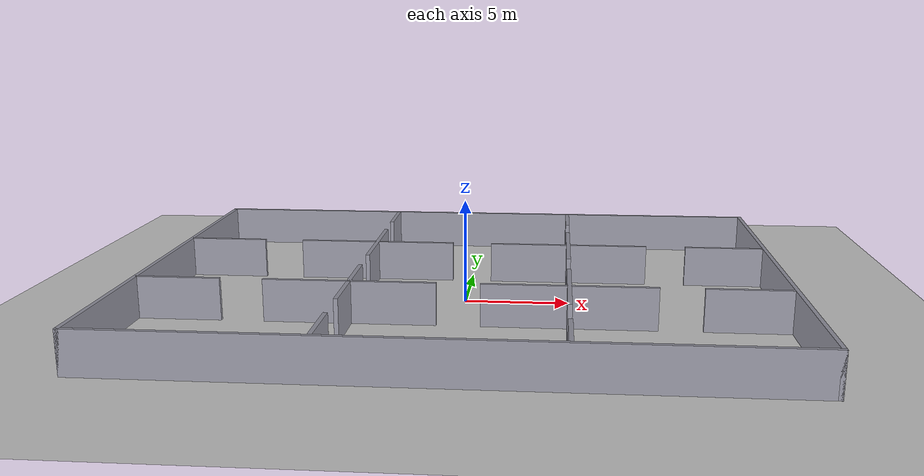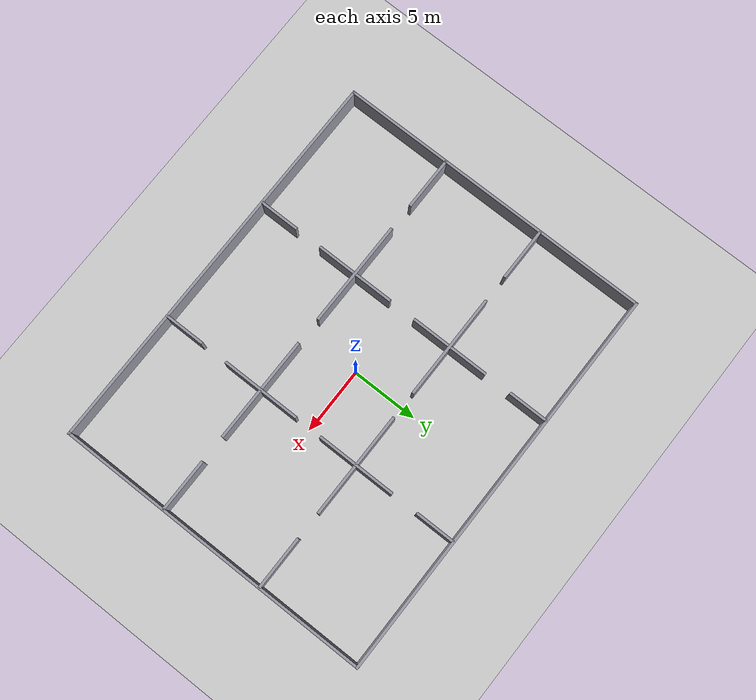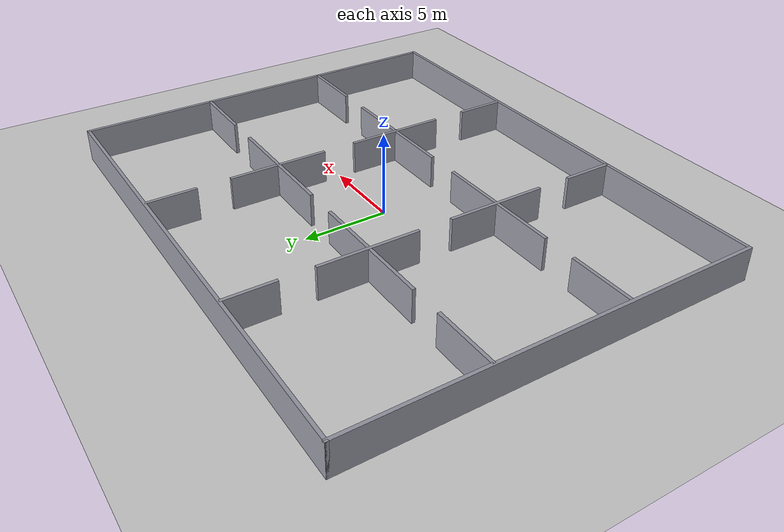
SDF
<?xml version="1.0" ?>
<sdf version="1.8">
  <world name="big_world">
    <physics name="1ms" type="dart">
      <max_step_size>0.001</max_step_size>
      <real_time_factor>1.0</real_time_factor>
    </physics>
    <plugin filename="gz-sim-physics-system" name="gz::sim::systems::Physics"/>
    <plugin filename="gz-sim-user-commands-system" name="gz::sim::systems::UserCommands"/>
    <plugin filename="gz-sim-scene-broadcaster-system" name="gz::sim::systems::SceneBroadcaster"/>
    <plugin filename="gz-sim-sensors-system" name="gz::sim::systems::Sensors">
      <render_engine>ogre2</render_engine>
    </plugin>
    <plugin filename="gz-sim-imu-system" name="gz::sim::systems::Imu"/>
    <light type="directional" name="sun">
      <cast_shadows>true</cast_shadows>
      <pose>0 0 10 0 0 0</pose>
      <diffuse>0.8 0.8 0.8 1</diffuse>
      <specular>0.2 0.2 0.2 1</specular>
      <direction>-0.5 0.1 -0.9</direction>
    </light>
    <model name="ground_plane">
      <static>true</static>
      <link name="link">
        <collision name="collision"><geometry><plane><normal>0 0 1</normal></plane></geometry></collision>
        <visual name="visual"><geometry><plane><normal>0 0 1</normal><size>100 100</size></plane></geometry>
          <material><ambient>0.8 0.8 0.8 1</ambient><diffuse>0.8 0.8 0.8 1</diffuse></material>
        </visual>
      </link>
    </model>
    <model name="outer_n">
      <static>true</static>
      <pose>0 12.0 1.0 0 0 0</pose>
      <link name="link">
        <collision name="c"><geometry><box><size>30.2 0.2 2.0</size></box></geometry></collision>
        <visual name="v"><geometry><box><size>30.2 0.2 2.0</size></box></geometry>
          <material><ambient>0.6 0.6 0.65 1</ambient><diffuse>0.6 0.6 0.65 1</diffuse></material>
        </visual>
      </link>
    </model>
    <model name="outer_s">
      <static>true</static>
      <pose>0 -12.0 1.0 0 0 0</pose>
      <link name="link">
        <collision name="c"><geometry><box><size>30.2 0.2 2.0</size></box></geometry></collision>
        <visual name="v"><geometry><box><size>30.2 0.2 2.0</size></box></geometry>
          <material><ambient>0.6 0.6 0.65 1</ambient><diffuse>0.6 0.6 0.65 1</diffuse></material>
        </visual>
      </link>
    </model>
    <model name="outer_e">
      <static>true</static>
      <pose>15.0 0 1.0 0 0 0</pose>
      <link name="link">
        <collision name="c"><geometry><box><size>0.2 24.2 2.0</size></box></geometry></collision>
        <visual name="v"><geometry><box><size>0.2 24.2 2.0</size></box></geometry>
          <material><ambient>0.6 0.6 0.65 1</ambient><diffuse>0.6 0.6 0.65 1</diffuse></material>
        </visual>
      </link>
    </model>
    <model name="outer_w">
      <static>true</static>
      <pose>-15.0 0 1.0 0 0 0</pose>
      <link name="link">
        <collision name="c"><geometry><box><size>0.2 24.2 2.0</size></box></geometry></collision>
        <visual name="v"><geometry><box><size>0.2 24.2 2.0</size></box></geometry>
          <material><ambient>0.6 0.6 0.65 1</ambient><diffuse>0.6 0.6 0.65 1</diffuse></material>
        </visual>
      </link>
    </model>
    <model name="vwall_0_0">
      <static>true</static>
      <pose>-5.0 -10.5 1.0 0 0 0</pose>
      <link name="link">
        <collision name="c"><geometry><box><size>0.2 3.0 2.0</size></box></geometry></collision>
        <visual name="v"><geometry><box><size>0.2 3.0 2.0</size></box></geometry>
          <material><ambient>0.6 0.6 0.65 1</ambient><diffuse>0.6 0.6 0.65 1</diffuse></material>
        </visual>
      </link>
    </model>
    <model name="vwall_0_1">
      <static>true</static>
      <pose>-5.0 -4.0 1.0 0 0 0</pose>
      <link name="link">
        <collision name="c"><geometry><box><size>0.2 6.0 2.0</size></box></geometry></collision>
        <visual name="v"><geometry><box><size>0.2 6.0 2.0</size></box></geometry>
          <material><ambient>0.6 0.6 0.65 1</ambient><diffuse>0.6 0.6 0.65 1</diffuse></material>
        </visual>
      </link>
    </model>
    <model name="vwall_0_2">
      <static>true</static>
      <pose>-5.0 4.0 1.0 0 0 0</pose>
      <link name="link">
        <collision name="c"><geometry><box><size>0.2 6.0 2.0</size></box></geometry></collision>
        <visual name="v"><geometry><box><size>0.2 6.0 2.0</size></box></geometry>
          <material><ambient>0.6 0.6 0.65 1</ambient><diffuse>0.6 0.6 0.65 1</diffuse></material>
        </visual>
      </link>
    </model>
    <model name="vwall_0_3">
      <static>true</static>
      <pose>-5.0 10.5 1.0 0 0 0</pose>
      <link name="link">
        <collision name="c"><geometry><box><size>0.2 3.0 2.0</size></box></geometry></collision>
        <visual name="v"><geometry><box><size>0.2 3.0 2.0</size></box></geometry>
          <material><ambient>0.6 0.6 0.65 1</ambient><diffuse>0.6 0.6 0.65 1</diffuse></material>
        </visual>
      </link>
    </model>
    <model name="vwall_1_0">
      <static>true</static>
      <pose>5.0 -10.5 1.0 0 0 0</pose>
      <link name="link">
        <collision name="c"><geometry><box><size>0.2 3.0 2.0</size></box></geometry></collision>
        <visual name="v"><geometry><box><size>0.2 3.0 2.0</size></box></geometry>
          <material><ambient>0.6 0.6 0.65 1</ambient><diffuse>0.6 0.6 0.65 1</diffuse></material>
        </visual>
      </link>
    </model>
    <model name="vwall_1_1">
      <static>true</static>
      <pose>5.0 -4.0 1.0 0 0 0</pose>
      <link name="link">
        <collision name="c"><geometry><box><size>0.2 6.0 2.0</size></box></geometry></collision>
        <visual name="v"><geometry><box><size>0.2 6.0 2.0</size></box></geometry>
          <material><ambient>0.6 0.6 0.65 1</ambient><diffuse>0.6 0.6 0.65 1</diffuse></material>
        </visual>
      </link>
    </model>
    <model name="vwall_1_2">
      <static>true</static>
      <pose>5.0 4.0 1.0 0 0 0</pose>
      <link name="link">
        <collision name="c"><geometry><box><size>0.2 6.0 2.0</size></box></geometry></collision>
        <visual name="v"><geometry><box><size>0.2 6.0 2.0</size></box></geometry>
          <material><ambient>0.6 0.6 0.65 1</ambient><diffuse>0.6 0.6 0.65 1</diffuse></material>
        </visual>
      </link>
    </model>
    <model name="vwall_1_3">
      <static>true</static>
      <pose>5.0 10.5 1.0 0 0 0</pose>
      <link name="link">
        <collision name="c"><geometry><box><size>0.2 3.0 2.0</size></box></geometry></collision>
        <visual name="v"><geometry><box><size>0.2 3.0 2.0</size></box></geometry>
          <material><ambient>0.6 0.6 0.65 1</ambient><diffuse>0.6 0.6 0.65 1</diffuse></material>
        </visual>
      </link>
    </model>
    <model name="hwall_0_0">
      <static>true</static>
      <pose>-13.0 -4.0 1.0 0 0 0</pose>
      <link name="link">
        <collision name="c"><geometry><box><size>4.0 0.2 2.0</size></box></geometry></collision>
        <visual name="v"><geometry><box><size>4.0 0.2 2.0</size></box></geometry>
          <material><ambient>0.6 0.6 0.65 1</ambient><diffuse>0.6 0.6 0.65 1</diffuse></material>
        </visual>
      </link>
    </model>
    <model name="hwall_0_1">
      <static>true</static>
      <pose>-5.0 -4.0 1.0 0 0 0</pose>
      <link name="link">
        <collision name="c"><geometry><box><size>8.0 0.2 2.0</size></box></geometry></collision>
        <visual name="v"><geometry><box><size>8.0 0.2 2.0</size></box></geometry>
          <material><ambient>0.6 0.6 0.65 1</ambient><diffuse>0.6 0.6 0.65 1</diffuse></material>
        </visual>
      </link>
    </model>
    <model name="hwall_0_2">
      <static>true</static>
      <pose>5.0 -4.0 1.0 0 0 0</pose>
      <link name="link">
        <collision name="c"><geometry><box><size>8.0 0.2 2.0</size></box></geometry></collision>
        <visual name="v"><geometry><box><size>8.0 0.2 2.0</size></box></geometry>
          <material><ambient>0.6 0.6 0.65 1</ambient><diffuse>0.6 0.6 0.65 1</diffuse></material>
        </visual>
      </link>
    </model>
    <model name="hwall_0_3">
      <static>true</static>
      <pose>13.0 -4.0 1.0 0 0 0</pose>
      <link name="link">
        <collision name="c"><geometry><box><size>4.0 0.2 2.0</size></box></geometry></collision>
        <visual name="v"><geometry><box><size>4.0 0.2 2.0</size></box></geometry>
          <material><ambient>0.6 0.6 0.65 1</ambient><diffuse>0.6 0.6 0.65 1</diffuse></material>
        </visual>
      </link>
    </model>
    <model name="hwall_1_0">
      <static>true</static>
      <pose>-13.0 4.0 1.0 0 0 0</pose>
      <link name="link">
        <collision name="c"><geometry><box><size>4.0 0.2 2.0</size></box></geometry></collision>
        <visual name="v"><geometry><box><size>4.0 0.2 2.0</size></box></geometry>
          <material><ambient>0.6 0.6 0.65 1</ambient><diffuse>0.6 0.6 0.65 1</diffuse></material>
        </visual>
      </link>
    </model>
    <model name="hwall_1_1">
      <static>true</static>
      <pose>-5.0 4.0 1.0 0 0 0</pose>
      <link name="link">
        <collision name="c"><geometry><box><size>8.0 0.2 2.0</size></box></geometry></collision>
        <visual name="v"><geometry><box><size>8.0 0.2 2.0</size></box></geometry>
          <material><ambient>0.6 0.6 0.65 1</ambient><diffuse>0.6 0.6 0.65 1</diffuse></material>
        </visual>
      </link>
    </model>
    <model name="hwall_1_2">
      <static>true</static>
      <pose>5.0 4.0 1.0 0 0 0</pose>
      <link name="link">
        <collision name="c"><geometry><box><size>8.0 0.2 2.0</size></box></geometry></collision>
        <visual name="v"><geometry><box><size>8.0 0.2 2.0</size></box></geometry>
          <material><ambient>0.6 0.6 0.65 1</ambient><diffuse>0.6 0.6 0.65 1</diffuse></material>
        </visual>
      </link>
    </model>
    <model name="hwall_1_3">
      <static>true</static>
      <pose>13.0 4.0 1.0 0 0 0</pose>
      <link name="link">
        <collision name="c"><geometry><box><size>4.0 0.2 2.0</size></box></geometry></collision>
        <visual name="v"><geometry><box><size>4.0 0.2 2.0</size></box></geometry>
          <material><ambient>0.6 0.6 0.65 1</ambient><diffuse>0.6 0.6 0.65 1</diffuse></material>
        </visual>
      </link>
    </model>
  </world>
</sdf>
